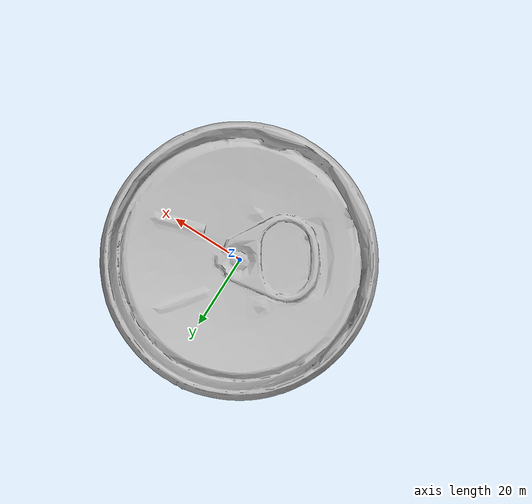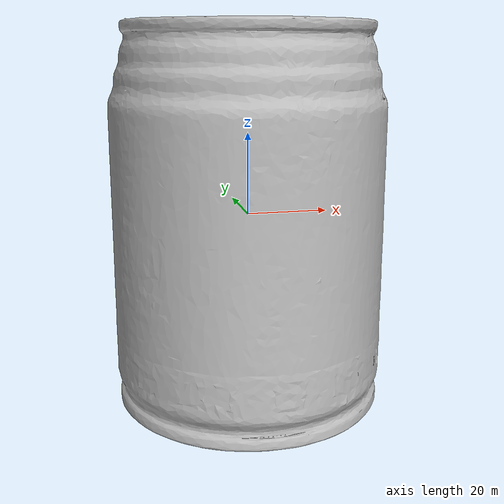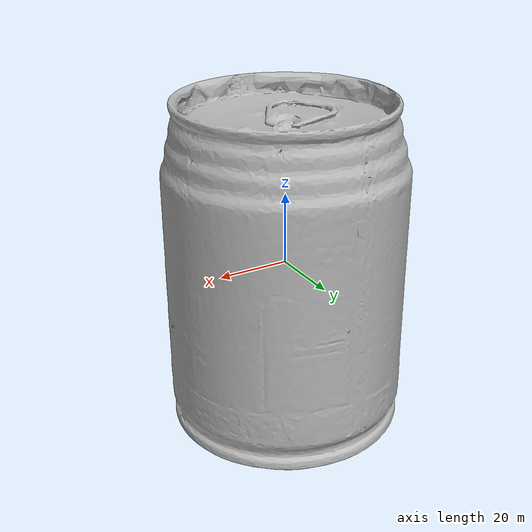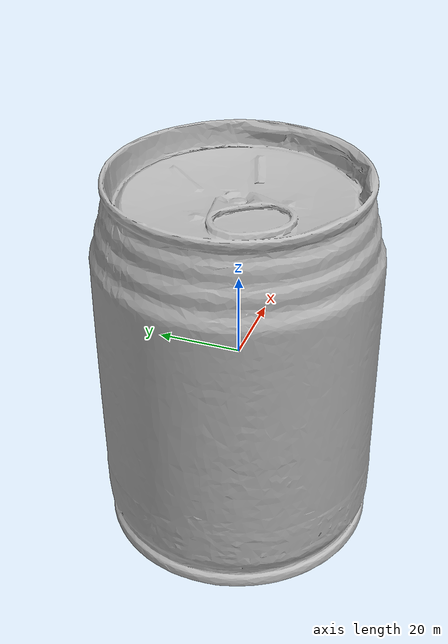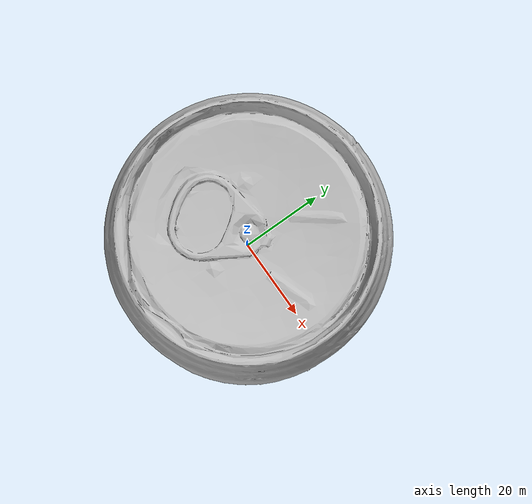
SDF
<sdf version="1.4">
 <world name="default">
  <light name="light1" type="point">
   <pose>0 0 1 0 0 0</pose>
   <diffuse>3 3 3 1</diffuse>
   <specular>3 3 3 1</specular>
  </light>
  <light name="light2" type="point">
   <pose>0 0.5 2 0 0 0</pose>
   <diffuse>1 1 1 1</diffuse>
   <specular>1 1 1 1</specular>
  </light>
  <light name="light3" type="point">
   <pose>0 0.5 2 0 0 0</pose>
   <diffuse>3 3 3 1</diffuse>
   <specular>3 3 3 1</specular>
  </light>
  <scene><ambient>0.7 0.7 0.7</ambient></scene>
  <model name="box1">
   <link name="link_box1">
    <collision name="default">
     <geometry>
      <mesh><uri>model://wooden_puzzle1/collision_meshes/collision.obj</uri><scale>1.0 1.0 1.0</scale></mesh>
     </geometry>
     <surface>
      <friction><ode><mu>0.5</mu><mu2>0.5</mu2></ode></friction>
      <contact><ode><max_vel>0</max_vel><min_depth>0.0001</min_depth><kp>1e8</kp></ode></contact>
     </surface>
    </collision>
    <visual name="default">
     <geometry>
      <mesh><uri>model://wooden_puzzle1/visual_meshes/visual.dae</uri><scale>1.0 1.0 1.0</scale></mesh>
     </geometry>
    </visual>
    <inertial>
     <mass>0.020629532635211945</mass>
     <pose>-0.0001735068071866408 7.972260937094688e-05 -9.191555000143126e-05 -0.07784798349428995 -0.2636160818751574 -0.552872324185161</pose>
     <inertia>
      <ixx>3.8922285e-06</ixx>
      <iyy>3.817302e-06</iyy>
      <izz>3.8628423e-06</izz>
      <ixy>0</ixy>
      <ixz>0</ixz>
      <iyz>0</iyz>
     </inertia>
    </inertial>
   </link>
   <pose>0.2775723934173584 -0.3034806251525879 0.016802003607153893 0.010514233024777062 -0.009454087406727438 2.654008402724466</pose>
  </model>
  <model name="box3">
   <link name="link_box3">
    <collision name="default">
     <geometry>
      <mesh><uri>model://wooden_puzzle2/collision_meshes/collision.obj</uri><scale>1.0 1.0 1.0</scale></mesh>
     </geometry>
     <surface>
      <friction><ode><mu>0.5</mu><mu2>0.5</mu2></ode></friction>
      <contact><ode><max_vel>0</max_vel><min_depth>0.0001</min_depth><kp>1e8</kp></ode></contact>
     </surface>
    </collision>
    <visual name="default">
     <geometry>
      <mesh><uri>model://wooden_puzzle2/visual_meshes/visual.dae</uri><scale>1.0 1.0 1.0</scale></mesh>
     </geometry>
    </visual>
    <inertial>
     <mass>0.05583015829324722</mass>
     <pose>2.7402536943554878e-05 4.997663199901581e-05 6.587122334167361e-05 -0.19203199902598803 0.6112853789707493 -0.6338693450254121</pose>
     <inertia>
      <ixx>1.0378231e-05</ixx>
      <iyy>1.06642165e-05</iyy>
      <izz>1.0512509e-05</izz>
      <ixy>0</ixy>
      <ixz>0</ixz>
      <iyz>0</iyz>
     </inertia>
    </inertial>
   </link>
   <pose>0.2808321714401245 0.21271315217018127 0.01691773533821106 0.020848657137136916 0.000721003395579506 1.4478978594327268</pose>
  </model>
  <model name="can1">
   <link name="link_can1">
    <collision name="default">
     <geometry>
      <mesh><uri>model://pepsi/collision_meshes/collision.obj</uri><scale>1.0 1.0 1.0</scale></mesh>
     </geometry>
     <surface>
      <friction><ode><mu>0.5</mu><mu2>0.5</mu2></ode></friction>
      <contact><ode><max_vel>0</max_vel><min_depth>0.0001</min_depth><kp>1e8</kp></ode></contact>
     </surface>
    </collision>
    <visual name="default">
     <geometry><mesh><uri>model://pepsi/visual_meshes/visual.dae</uri><scale>1.0 1.0 1.0</scale></mesh></geometry>
    </visual>
    <inertial>
     <mass>0.49348899722099304</mass>
     <pose>-7.5590331107378e-05 2.9931279641459696e-05 -0.0003384356386959553 -0.0010677622415870868 -0.0021735774955872703 0.5673701275352521</pose>
     <inertia>
      <ixx>0.0009831247</ixx>
      <iyy>0.0009824084</iyy>
      <izz>0.00020924417</izz>
      <ixy>0</ixy>
      <ixz>0</ixz>
      <iyz>0</iyz>
     </inertia>
    </inertial>
   </link>
   <pose>0.0017748409882187843 0.09570366144180298 0.0744963213801384 -1.8728080348444767e-05 2.19858849865629e-06 1.344493115623086</pose>
  </model>
  <model name="can2">
   <link name="link_can2">
    <collision name="default">
     <geometry>
      <mesh><uri>model://redbull/collision_meshes/collision.obj</uri><scale>1.0 1.0 1.0</scale></mesh>
     </geometry>
     <surface>
      <friction><ode><mu>0.5</mu><mu2>0.5</mu2></ode></friction>
      <contact><ode><max_vel>0</max_vel><min_depth>0.0001</min_depth><kp>1e8</kp></ode></contact>
     </surface>
    </collision>
    <visual name="default">
     <geometry>
      <mesh><uri>model://redbull/visual_meshes/visual.dae</uri><scale>1.0 1.0 1.0</scale></mesh>
     </geometry>
    </visual>
    <inertial>
     <mass>0.3443465232849121</mass>
     <pose>-2.2127078409539536e-05 -0.00012659528874792159 -0.0006860987632535398 0.0011367237692686564 -0.010800964902263904 0.5859097418646089</pose>
     <inertia>
      <ixx>0.0003237599</ixx>
      <iyy>0.00032403314</iyy>
      <izz>0.00019212745</izz>
      <ixy>0</ixy>
      <ixz>0</ixz>
      <iyz>0</iyz>
     </inertia>
    </inertial>
   </link>
   <pose>0.22865556180477142 0.16422662138938904 0.04637790098786354 -0.010048654124206068 0.007500701206349552 -0.5557018167556442</pose>
  </model>
  <physics type="ode">
   <max_contacts>50</max_contacts>
   <ode>
    <solver><type>quick</type><iters>75</iters></solver>
    <constraints>
     <contact_max_correcting_vel>0</contact_max_correcting_vel>
     <contact_surface_layer>0</contact_surface_layer>
    </constraints>
   </ode>
  </physics>
 </world>
</sdf>
